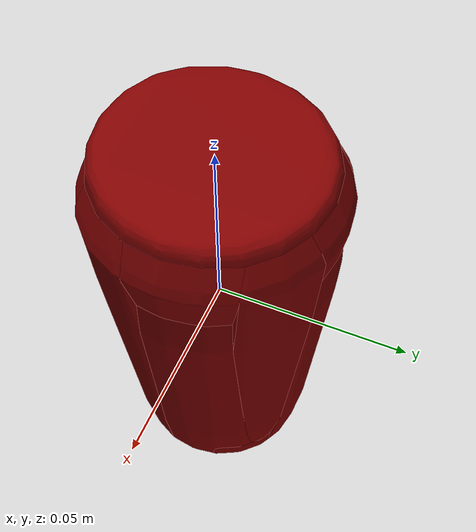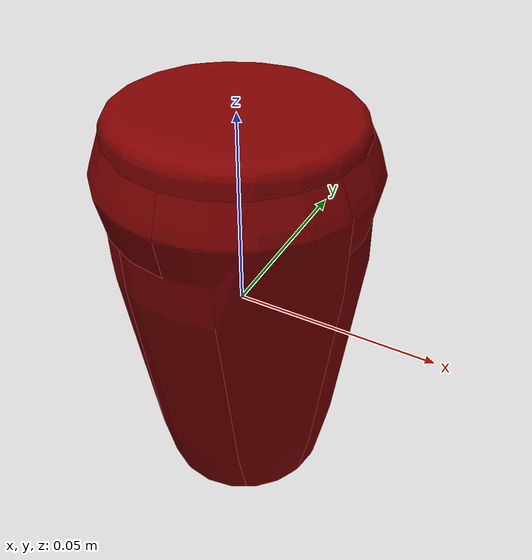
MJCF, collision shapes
<?xml version="1.0" encoding="utf-8"?>
<mujoco model="coffee_cup_3_water">
  <asset>
    <mesh file="visual/model_normalized_0.obj" name="model_normalized_0_vis" scale="0.105 0.105 0.105" refquat="1.0000000000000004 0.0 0.0 0.0" />
    <mesh file="visual/model_normalized_1.obj" name="model_normalized_1_vis" scale="0.105 0.105 0.105" refquat="1.0000000000000004 0.0 0.0 0.0" />
    <mesh file="visual/model_normalized_2.obj" name="model_normalized_2_vis" scale="0.105 0.105 0.105" refquat="1.0000000000000004 0.0 0.0 0.0" />
    <texture type="2d" name="image0" file="visual/image0.png" />
    <texture type="2d" name="image1" file="visual/image1.png" />
    <texture type="2d" name="image2" file="visual/image2.png" />
    <material name="aiStandardSurface3" texture="image0" specular="0.5" shininess="0.15999998099999999" />
    <material name="aiStandardSurface5" texture="image1" specular="0.5" shininess="0.15999998099999999" />
    <material name="cup_cover_texture_mat" texture="image2" specular="0.5" shininess="0.15999998099999999" />
    <mesh file="collision/collision_mesh_collision_0.obj" name="coffee_collision_mesh_0" scale="0.105 0.105 0.105" refquat="1.0000000000000004 0.0 0.0 0.0" />
    <mesh file="collision/collision_mesh_collision_1.obj" name="coffee_collision_mesh_1" scale="0.105 0.105 0.105" refquat="1.0000000000000004 0.0 0.0 0.0" />
    <mesh file="collision/collision_mesh_collision_2.obj" name="coffee_collision_mesh_2" scale="0.105 0.105 0.105" refquat="1.0000000000000004 0.0 0.0 0.0" />
    <mesh file="collision/collision_mesh_collision_3.obj" name="coffee_collision_mesh_3" scale="0.105 0.105 0.105" refquat="1.0000000000000004 0.0 0.0 0.0" />
    <mesh file="collision/collision_mesh_collision_4.obj" name="coffee_collision_mesh_4" scale="0.105 0.105 0.105" refquat="1.0000000000000004 0.0 0.0 0.0" />
    <mesh file="collision/collision_mesh_collision_5.obj" name="coffee_collision_mesh_5" scale="0.105 0.105 0.105" refquat="1.0000000000000004 0.0 0.0 0.0" />
    <mesh file="collision/collision_mesh_collision_6.obj" name="coffee_collision_mesh_6" scale="0.105 0.105 0.105" refquat="1.0000000000000004 0.0 0.0 0.0" />
    <mesh file="collision/collision_mesh_collision_7.obj" name="coffee_collision_mesh_7" scale="0.105 0.105 0.105" refquat="1.0000000000000004 0.0 0.0 0.0" />
    <mesh file="collision/collision_mesh_collision_8.obj" name="coffee_collision_mesh_8" scale="0.105 0.105 0.105" refquat="1.0000000000000004 0.0 0.0 0.0" />
    <mesh file="collision/collision_mesh_collision_9.obj" name="coffee_collision_mesh_9" scale="0.105 0.105 0.105" refquat="1.0000000000000004 0.0 0.0 0.0" />
    <mesh file="collision/collision_mesh_collision_10.obj" name="coffee_collision_mesh_10" scale="0.105 0.105 0.105" refquat="1.0000000000000004 0.0 0.0 0.0" />
    <mesh file="collision/collision_mesh_collision_11.obj" name="coffee_collision_mesh_11" scale="0.105 0.105 0.105" refquat="1.0000000000000004 0.0 0.0 0.0" />
    <mesh file="collision/collision_mesh_collision_12.obj" name="coffee_collision_mesh_12" scale="0.105 0.105 0.105" refquat="1.0000000000000004 0.0 0.0 0.0" />
    <mesh file="collision/collision_mesh_collision_13.obj" name="coffee_collision_mesh_13" scale="0.105 0.105 0.105" refquat="1.0000000000000004 0.0 0.0 0.0" />
    <mesh file="collision/collision_mesh_collision_14.obj" name="coffee_collision_mesh_14" scale="0.105 0.105 0.105" refquat="1.0000000000000004 0.0 0.0 0.0" />
    <mesh file="collision/collision_mesh_collision_15.obj" name="coffee_collision_mesh_15" scale="0.105 0.105 0.105" refquat="1.0000000000000004 0.0 0.0 0.0" />
  </asset>
  <default>
    <default class="region">
      <geom group="1" conaffinity="0" contype="0" rgba="0 1 0 0" />
    </default>
    <default class="collision">
      <geom group="0" rgba="0.5 0 0 0.5" density="1000.0" solimp="0.995 0.999 0.001" solref="0.005 1" />
    </default>
  </default>
  <worldbody>
    <body>
      <body name="object">
        <!-- 15 g cup + approximately 200 mL of water. -->
        <inertial pos="0 0 -0.0136" mass="0.215" diaginertia="1.472e-4 1.472e-4 9.675e-5" />
        <geom solimp="0.998 0.998 0.001" solref="0.001 1" density="100" friction="0.95 0.3 0.1" type="mesh" mesh="model_normalized_0_vis" conaffinity="0" contype="0" group="1" material="cup_cover_texture_mat" />
        <geom solimp="0.998 0.998 0.001" solref="0.001 1" density="100" friction="0.95 0.3 0.1" type="mesh" mesh="model_normalized_1_vis" conaffinity="0" contype="0" group="1" material="aiStandardSurface5" />
        <geom solimp="0.998 0.998 0.001" solref="0.001 1" density="100" friction="0.95 0.3 0.1" type="mesh" mesh="model_normalized_2_vis" conaffinity="0" contype="0" group="1" material="aiStandardSurface3" />
        <geom class="region" name="reg_bbox" type="box" pos="2.488500000001614e-07 -7.3552500000016725e-06 5.73058500000001e-05" size="0.0323047221 0.03230434725 0.053007603599999994" />
        <geom mesh="coffee_collision_mesh_0" type="mesh" class="collision" group="0" friction="0.4 0.02 0.001" solref="0.005 1" />
        <geom mesh="coffee_collision_mesh_1" type="mesh" class="collision" group="0" friction="0.4 0.02 0.001" solref="0.005 1" />
        <geom mesh="coffee_collision_mesh_2" type="mesh" class="collision" group="0" friction="0.4 0.02 0.001" solref="0.005 1" />
        <geom mesh="coffee_collision_mesh_3" type="mesh" class="collision" group="0" friction="0.4 0.02 0.001" solref="0.005 1" />
        <geom mesh="coffee_collision_mesh_4" type="mesh" class="collision" group="0" friction="0.4 0.02 0.001" solref="0.005 1" />
        <geom mesh="coffee_collision_mesh_5" type="mesh" class="collision" group="0" friction="0.4 0.02 0.001" solref="0.005 1" />
        <geom mesh="coffee_collision_mesh_6" type="mesh" class="collision" group="0" friction="0.4 0.02 0.001" solref="0.005 1" />
        <geom mesh="coffee_collision_mesh_7" type="mesh" class="collision" group="0" friction="0.4 0.02 0.001" solref="0.005 1" />
        <geom mesh="coffee_collision_mesh_8" type="mesh" class="collision" group="0" friction="0.4 0.02 0.001" solref="0.005 1" />
        <geom mesh="coffee_collision_mesh_9" type="mesh" class="collision" group="0" friction="0.4 0.02 0.001" solref="0.005 1" />
        <geom mesh="coffee_collision_mesh_10" type="mesh" class="collision" group="0" friction="0.4 0.02 0.001" solref="0.005 1" />
        <geom mesh="coffee_collision_mesh_11" type="mesh" class="collision" group="0" friction="0.4 0.02 0.001" solref="0.005 1" />
        <geom mesh="coffee_collision_mesh_12" type="mesh" class="collision" group="0" friction="0.4 0.02 0.001" solref="0.005 1" />
        <geom mesh="coffee_collision_mesh_13" type="mesh" class="collision" group="0" friction="0.4 0.02 0.001" solref="0.005 1" />
        <geom mesh="coffee_collision_mesh_14" type="mesh" class="collision" group="0" friction="0.4 0.02 0.001" solref="0.005 1" />
        <geom mesh="coffee_collision_mesh_15" type="mesh" class="collision" group="0" friction="0.4 0.02 0.001" solref="0.005 1" />
      </body>
      <site name="bottom_site" pos="0 0 -0.053007604" size="0.001" rgba="0 0 0 0" />
      <site name="top_site" pos="0 0 0.053007604" size="0.001" rgba="0 0 0 0" />
      <site name="horizontal_radius_site" pos="0.032304722 0 0" size="0.001" rgba="0 0 0 0" />
    </body>
  </worldbody>
</mujoco>
